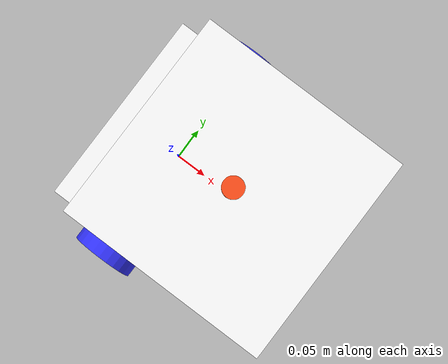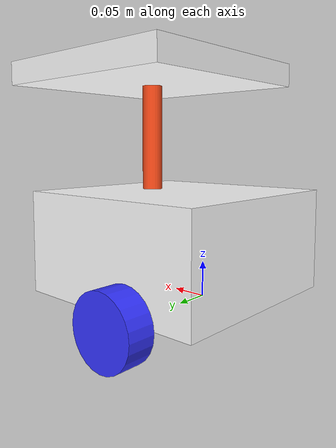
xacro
<?xml version="1.0"?>
<robot xmlns:xacro="http://www.ros.org/wiki/xacro" >

    <xacro:include filename="inertial_macros.xacro"/>

    <material name="white">
        <color rgba="1 1 1 1" />
    </material>

    <material name="orange">
        <color rgba="1 0.3 0.1 1"/>
    </material>

    <material name="blue">
        <color rgba="0.2 0.2 1 1"/>
    </material>

    <material name="black">
        <color rgba="0 0 0 1"/>
    </material>

    <material name="red">
        <color rgba="1 0 0 1"/>
    </material>

    <!-- BASE LINK -->

    <link name="base_link">

    </link>
           <!-- BASE_FOOTPRINT LINK -->

    <joint name="base_footprint_joint" type="fixed">
        <parent link="base_link"/>
        <child link="base_footprint"/>
        <origin xyz="0 0 0" rpy="0 0 0"/>
    </joint>

    <link name="base_footprint">
    </link>

    <!-- CHASSIS LINK -->

    <joint name="chassis_joint" type="fixed">
        <parent link="base_link"/>
        <child link="chassis"/>
        <origin xyz="-0.1 0 0"/>
    </joint>

    <link name="chassis">
        <visual>
            <origin xyz="0.15 0 0.075"/>
            <geometry>
                <box size="0.3 0.3 0.15"/>
            </geometry>
            <material name="white"/>
        </visual>
        <collision>
            <origin xyz="0.15 0 0.075"/>
            <geometry>
                <box size="0.3 0.3 0.15"/>
            </geometry>
        </collision>
        <xacro:inertial_box mass="0.5" x="0.3" y="0.3" z="0.15">
            <origin xyz="0.15 0 0.075" rpy="0 0 0"/>
        </xacro:inertial_box>
    </link>

    <gazebo reference="chassis">
        <material>Gazebo/White</material>
    </gazebo>

    <!-- LEFT WHEEL LINK -->

    <joint name="left_wheel_joint" type="continuous">
        <parent link="base_link"/>
        <child link="left_wheel"/>
        <origin xyz="0 0.175 0" rpy="-${pi/2} 0 0" />
        <axis xyz="0 0 1"/>
    </joint>

    <link name="left_wheel">
        <visual>
            <geometry>
                <cylinder radius="0.05" length="0.04"/>
            </geometry>
            <material name="blue"/>
        </visual>
        <collision>
            <geometry>
                <cylinder radius="0.05" length="0.04"/>
            </geometry>
        </collision>
        <xacro:inertial_cylinder mass="0.1" length="0.04" radius="0.05">
            <origin xyz="0 0 0" rpy="0 0 0"/>
        </xacro:inertial_cylinder>
    </link>

    <gazebo reference="left_wheel">
        <material>Gazebo/Blue</material>
    </gazebo>

    <!-- RIGHT WHEEL LINK -->

    <joint name="right_wheel_joint" type="continuous">
        <parent link="base_link"/>
        <child link="right_wheel"/>
        <origin xyz="0 -0.175 0" rpy="${pi/2} 0 0" />
        <axis xyz="0 0 -1"/>
    </joint>

    <link name="right_wheel">
        <visual>
            <geometry>
                <cylinder radius="0.05" length="0.04"/>
            </geometry>
            <material name="blue"/>
        </visual>
        <collision>
            <geometry>
                <cylinder radius="0.05" length="0.04"/>
            </geometry>
        </collision>
        <xacro:inertial_cylinder mass="0.1" length="0.04" radius="0.05">
            <origin xyz="0 0 0" rpy="0 0 0"/>
        </xacro:inertial_cylinder>
    </link>

    <gazebo reference="right_wheel">
        <material>Gazebo/Blue</material>
    </gazebo>

    <!-- CASTER WHEEL LINK -->

    <joint name="caster_wheel_joint" type="fixed">
        <parent link="chassis"/>
        <child link="caster_wheel"/>
        <origin xyz="0.24 0 0"/>
    </joint>

    <link name="caster_wheel">
        <visual>
            <geometry>
                <sphere radius="0.05"/>
            </geometry>
            <material name="black"/>
        </visual>
        <collision>
            <geometry>
                <sphere radius="0.05"/>
            </geometry>
        </collision>
        <xacro:inertial_sphere mass="0.1" radius="0.05">
            <origin xyz="0 0 0" rpy="0 0 0"/>
        </xacro:inertial_sphere>
    </link>

    <gazebo reference="caster_wheel">
        <material>Gazebo/Black</material>
        <mu1 value="0.001"/>
        <mu2 value="0.001"/>
    </gazebo>
    <joint name="cylinder_joint" type="fixed">
        <parent link="chassis"/>
        <child link="cylinder_support"/>
        <origin xyz="0.2 0 0.175" rpy="0 0 0"/>
    </joint>

    <link name="cylinder_support">
        <visual>
            <geometry>
                <cylinder radius="0.015" length="0.35"/>
            </geometry>
            <material name="orange"/>
        </visual>
        <collision>
            <geometry>
                <cylinder radius="0.015" length="0.35"/>
            </geometry>
        </collision>
        <xacro:inertial_cylinder mass="0.1" length="0.02" radius="0.1">
            <origin xyz="0 0 0" rpy="0 0 0"/>
        </xacro:inertial_cylinder>
    </link>
    <gazebo reference="cylinder_support">
        <material>Gazebo/Orange</material>
        <mu1 value="0.001"/>
        <mu2 value="0.001"/>
    </gazebo>

    <joint name="up_box_joint" type="fixed">
        <parent link="cylinder_support"/>
        <child link="up_box"/>
        <origin xyz="0 0 0.075"/>
    </joint>

    <link name="up_box">
        <visual>
            <origin xyz="0 0 0.075"/>
            <geometry>
                <box size="0.3 0.3 0.035"/>
            </geometry>
            <material name="white"/>
        </visual>
        <collision>
            <origin xyz="0.0 0 0.075"/>
            <geometry>
                <box size="0.03 0.03 0.015"/>
            </geometry>
        </collision>
        <xacro:inertial_box mass="0.5" x="0.3" y="0.3" z="0.15">
            <origin xyz="0 0 0" rpy="0 0 0"/>
        </xacro:inertial_box>
    </link>

    <gazebo reference="chassis">
        <material>Gazebo/White</material>
    </gazebo>
</robot>
